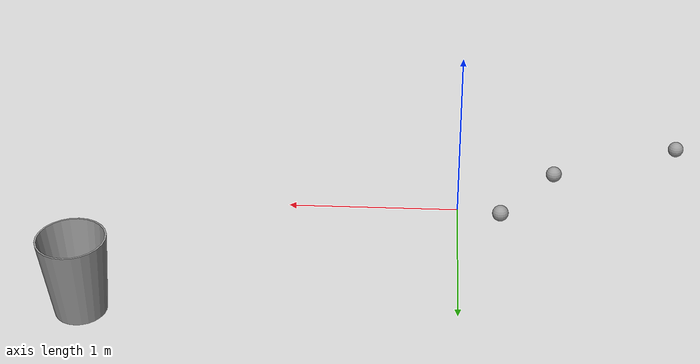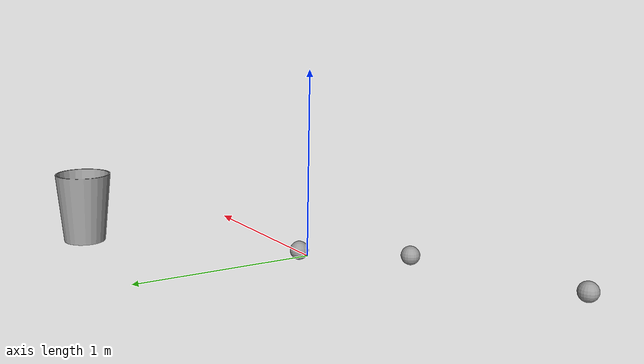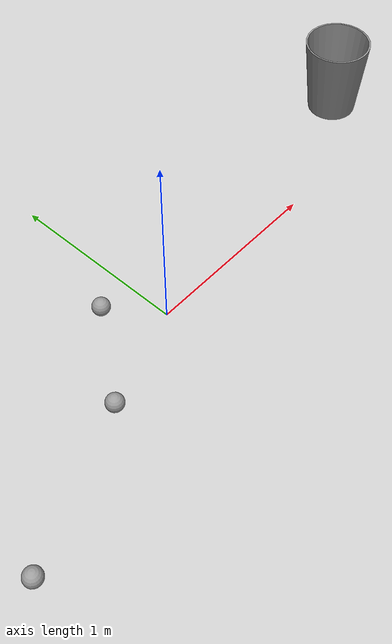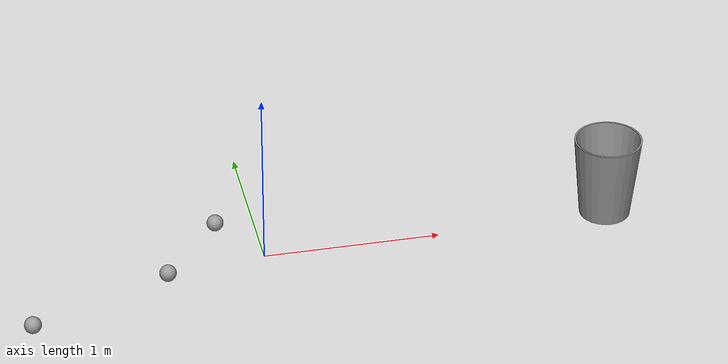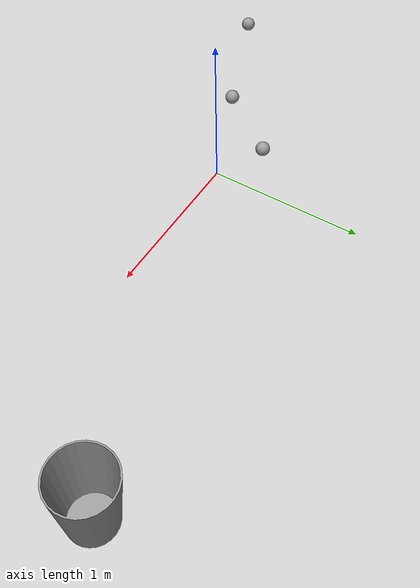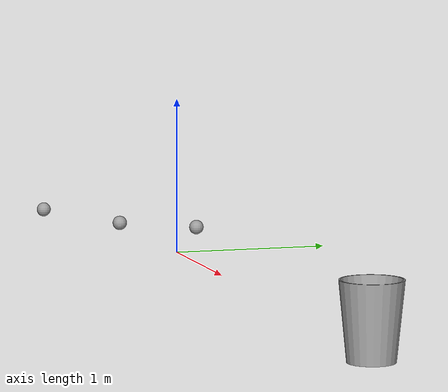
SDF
<?xml version='1.0'?>
<sdf version='1.7'>
  <model name='Model'>
    <link name='link_0'>
      <inertial>
        <mass>1</mass>
        <inertia>
          <ixx>0.166667</ixx>
          <ixy>0</ixy>
          <ixz>0</ixz>
          <iyy>0.166667</iyy>
          <iyz>0</iyz>
          <izz>0.166667</izz>
        </inertia>
        <pose>0 0 0 0 -0 0</pose>
      </inertial>
      <pose>2.16601 0.581718 -0.375 0 -0 0</pose>
      <gravity>1</gravity>
      <self_collide>0</self_collide>
      <kinematic>0</kinematic>
      <enable_wind>0</enable_wind>
      <visual name='visual'>
        <pose>0 0 0 0 -0 0</pose>
        <geometry>
          <mesh>
            <uri>/home/bharat/catkin_ws/src/interbotix_ros_rovers/interbotix_ros_xslocobots/interbotix_xslocobot_gazebo/models/trash_bin/meshes/model.dae</uri>
            <scale>1 1 1</scale>
          </mesh>
        </geometry>
        <material>
          <lighting>1</lighting>
          <script>
            <uri>file://media/materials/scripts/gazebo.material</uri>
            <name>Gazebo/Grey</name>
          </script>
          <shader type='pixel'>
            <normal_map>__default__</normal_map>
          </shader>
        </material>
        <transparency>0</transparency>
        <cast_shadows>1</cast_shadows>
      </visual>
      <collision name='collision'>
        <laser_retro>0</laser_retro>
        <max_contacts>10</max_contacts>
        <pose>0 0 0 0 -0 0</pose>
        <geometry>
          <mesh>
            <uri>/home/bharat/catkin_ws/src/interbotix_ros_rovers/interbotix_ros_xslocobots/interbotix_xslocobot_gazebo/models/trash_bin/meshes/model.dae</uri>
            <scale>1 1 1</scale>
          </mesh>
        </geometry>
        <surface>
          <friction>
            <ode>
              <mu>1</mu>
              <mu2>1</mu2>
              <fdir1>0 0 0</fdir1>
              <slip1>0</slip1>
              <slip2>0</slip2>
            </ode>
            <torsional>
              <coefficient>1</coefficient>
              <patch_radius>0</patch_radius>
              <surface_radius>0</surface_radius>
              <use_patch_radius>1</use_patch_radius>
              <ode>
                <slip>0</slip>
              </ode>
            </torsional>
          </friction>
          <bounce>
            <restitution_coefficient>0</restitution_coefficient>
            <threshold>1e+06</threshold>
          </bounce>
          <contact>
            <collide_without_contact>0</collide_without_contact>
            <collide_without_contact_bitmask>1</collide_without_contact_bitmask>
            <collide_bitmask>1</collide_bitmask>
            <ode>
              <soft_cfm>0</soft_cfm>
              <soft_erp>0.2</soft_erp>
              <kp>1e+13</kp>
              <kd>1</kd>
              <max_vel>0.01</max_vel>
              <min_depth>0</min_depth>
            </ode>
            <bullet>
              <split_impulse>1</split_impulse>
              <split_impulse_penetration_threshold>-0.01</split_impulse_penetration_threshold>
              <soft_cfm>0</soft_cfm>
              <soft_erp>0.2</soft_erp>
              <kp>1e+13</kp>
              <kd>1</kd>
            </bullet>
          </contact>
        </surface>
      </collision>
    </link>
    <link name='link_1'>
      <inertial>
        <mass>0.000807828</mass>
        <inertia>
          <ixx>7.00888e-07</ixx>
          <ixy>0</ixy>
          <ixz>0</ixz>
          <iyy>7.00888e-07</iyy>
          <iyz>0</iyz>
          <izz>7.00888e-07</izz>
        </inertia>
        <pose>0 0 0 0 -0 0</pose>
      </inertial>
      <pose>-0.241531 0.202851 0.125 0 -0 0</pose>
      <visual name='visual'>
        <pose>0 0 0 0 -0 0</pose>
        <geometry>
          <sphere>
            <radius>0.0465731</radius>
          </sphere>
        </geometry>
        <material>
          <lighting>1</lighting>
          <script>
            <uri>file://media/materials/scripts/gazebo.material</uri>
            <name>Gazebo/Grey</name>
          </script>
          <shader type='pixel'/>
        </material>
        <transparency>0</transparency>
        <cast_shadows>1</cast_shadows>
      </visual>
      <collision name='collision'>
        <laser_retro>0</laser_retro>
        <max_contacts>10</max_contacts>
        <pose>0 0 0 0 -0 0</pose>
        <geometry>
          <sphere>
            <radius>0.046573</radius>
          </sphere>
        </geometry>
        <surface>
          <friction>
            <ode>
              <mu>1</mu>
              <mu2>1</mu2>
              <fdir1>0 0 0</fdir1>
              <slip1>0</slip1>
              <slip2>0</slip2>
            </ode>
            <torsional>
              <coefficient>1</coefficient>
              <patch_radius>0</patch_radius>
              <surface_radius>0</surface_radius>
              <use_patch_radius>1</use_patch_radius>
              <ode>
                <slip>0</slip>
              </ode>
            </torsional>
          </friction>
          <bounce>
            <restitution_coefficient>0</restitution_coefficient>
            <threshold>1e+06</threshold>
          </bounce>
          <contact>
            <collide_without_contact>0</collide_without_contact>
            <collide_without_contact_bitmask>1</collide_without_contact_bitmask>
            <collide_bitmask>1</collide_bitmask>
            <ode>
              <soft_cfm>0</soft_cfm>
              <soft_erp>0.2</soft_erp>
              <kp>1e+13</kp>
              <kd>1</kd>
              <max_vel>0.01</max_vel>
              <min_depth>0</min_depth>
            </ode>
            <bullet>
              <split_impulse>1</split_impulse>
              <split_impulse_penetration_threshold>-0.01</split_impulse_penetration_threshold>
              <soft_cfm>0</soft_cfm>
              <soft_erp>0.2</soft_erp>
              <kp>1e+13</kp>
              <kd>1</kd>
            </bullet>
          </contact>
        </surface>
      </collision>
    </link>
    <link name='link_1_clone'>
      <inertial>
        <mass>0.000807828</mass>
        <inertia>
          <ixx>7.00888e-07</ixx>
          <ixy>0</ixy>
          <ixz>0</ixz>
          <iyy>7.00888e-07</iyy>
          <iyz>0</iyz>
          <izz>7.00888e-07</izz>
        </inertia>
        <pose>0 0 0 0 -0 0</pose>
      </inertial>
      <pose>-0.575084 -0.228906 0.125 0 -0 0</pose>
      <visual name='visual'>
        <pose>0 0 0 0 -0 0</pose>
        <geometry>
          <sphere>
            <radius>0.0465731</radius>
          </sphere>
        </geometry>
        <material>
          <lighting>1</lighting>
          <script>
            <uri>file://media/materials/scripts/gazebo.material</uri>
            <name>Gazebo/Grey</name>
          </script>
          <shader type='pixel'/>
        </material>
        <transparency>0</transparency>
        <cast_shadows>1</cast_shadows>
      </visual>
      <collision name='collision'>
        <laser_retro>0</laser_retro>
        <max_contacts>10</max_contacts>
        <pose>0 0 0 0 -0 0</pose>
        <geometry>
          <sphere>
            <radius>0.046573</radius>
          </sphere>
        </geometry>
        <surface>
          <friction>
            <ode>
              <mu>1</mu>
              <mu2>1</mu2>
              <fdir1>0 0 0</fdir1>
              <slip1>0</slip1>
              <slip2>0</slip2>
            </ode>
            <torsional>
              <coefficient>1</coefficient>
              <patch_radius>0</patch_radius>
              <surface_radius>0</surface_radius>
              <use_patch_radius>1</use_patch_radius>
              <ode>
                <slip>0</slip>
              </ode>
            </torsional>
          </friction>
          <bounce>
            <restitution_coefficient>0</restitution_coefficient>
            <threshold>1e+06</threshold>
          </bounce>
          <contact>
            <collide_without_contact>0</collide_without_contact>
            <collide_without_contact_bitmask>1</collide_without_contact_bitmask>
            <collide_bitmask>1</collide_bitmask>
            <ode>
              <soft_cfm>0</soft_cfm>
              <soft_erp>0.2</soft_erp>
              <kp>1e+13</kp>
              <kd>1</kd>
              <max_vel>0.01</max_vel>
              <min_depth>0</min_depth>
            </ode>
            <bullet>
              <split_impulse>1</split_impulse>
              <split_impulse_penetration_threshold>-0.01</split_impulse_penetration_threshold>
              <soft_cfm>0</soft_cfm>
              <soft_erp>0.2</soft_erp>
              <kp>1e+13</kp>
              <kd>1</kd>
            </bullet>
          </contact>
        </surface>
      </collision>
    </link>
    <link name='link_1_clone_clone'>
      <inertial>
        <mass>0.000807828</mass>
        <inertia>
          <ixx>7.00888e-07</ixx>
          <ixy>0</ixy>
          <ixz>0</ixz>
          <iyy>7.00888e-07</iyy>
          <iyz>0</iyz>
          <izz>7.00888e-07</izz>
        </inertia>
        <pose>0 0 0 0 -0 0</pose>
      </inertial>
      <pose>-1.34939 -0.55566 0.125 0 -0 0</pose>
      <visual name='visual'>
        <pose>0 0 0 0 -0 0</pose>
        <geometry>
          <sphere>
            <radius>0.0465731</radius>
          </sphere>
        </geometry>
        <material>
          <lighting>1</lighting>
          <script>
            <uri>file://media/materials/scripts/gazebo.material</uri>
            <name>Gazebo/Grey</name>
          </script>
          <shader type='pixel'/>
        </material>
        <transparency>0</transparency>
        <cast_shadows>1</cast_shadows>
      </visual>
      <collision name='collision'>
        <laser_retro>0</laser_retro>
        <max_contacts>10</max_contacts>
        <pose>0 0 0 0 -0 0</pose>
        <geometry>
          <sphere>
            <radius>0.046573</radius>
          </sphere>
        </geometry>
        <surface>
          <friction>
            <ode>
              <mu>1</mu>
              <mu2>1</mu2>
              <fdir1>0 0 0</fdir1>
              <slip1>0</slip1>
              <slip2>0</slip2>
            </ode>
            <torsional>
              <coefficient>1</coefficient>
              <patch_radius>0</patch_radius>
              <surface_radius>0</surface_radius>
              <use_patch_radius>1</use_patch_radius>
              <ode>
                <slip>0</slip>
              </ode>
            </torsional>
          </friction>
          <bounce>
            <restitution_coefficient>0</restitution_coefficient>
            <threshold>1e+06</threshold>
          </bounce>
          <contact>
            <collide_without_contact>0</collide_without_contact>
            <collide_without_contact_bitmask>1</collide_without_contact_bitmask>
            <collide_bitmask>1</collide_bitmask>
            <ode>
              <soft_cfm>0</soft_cfm>
              <soft_erp>0.2</soft_erp>
              <kp>1e+13</kp>
              <kd>1</kd>
              <max_vel>0.01</max_vel>
              <min_depth>0</min_depth>
            </ode>
            <bullet>
              <split_impulse>1</split_impulse>
              <split_impulse_penetration_threshold>-0.01</split_impulse_penetration_threshold>
              <soft_cfm>0</soft_cfm>
              <soft_erp>0.2</soft_erp>
              <kp>1e+13</kp>
              <kd>1</kd>
            </bullet>
          </contact>
        </surface>
      </collision>
    </link>
    <static>0</static>
    <allow_auto_disable>1</allow_auto_disable>
  </model>
</sdf>
